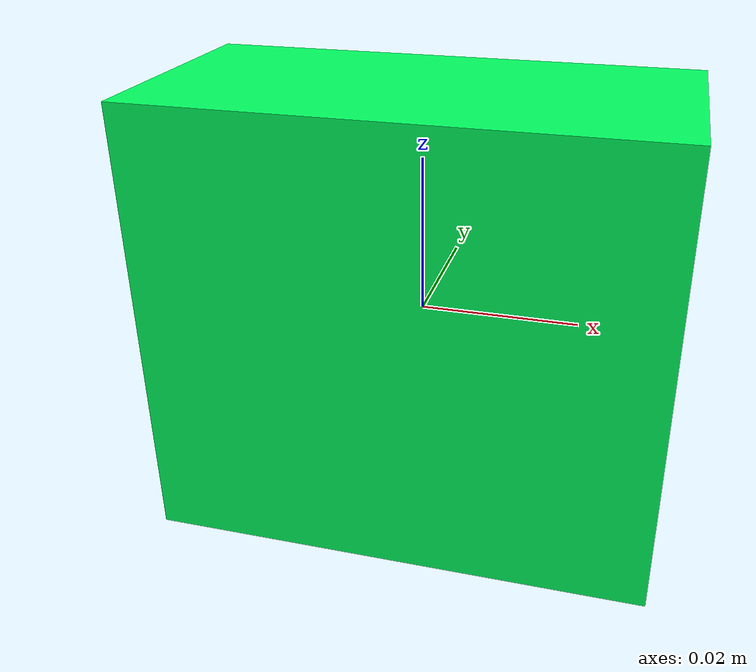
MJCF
<mujoco model="green_cuboid">
  <compiler angle="radian" meshdir="assets" autolimits="true"/>

  <option cone="elliptic" impratio="10"/>

  <worldbody>
    <body name="box_body">
        <geom type="box" size="0.032 0.016 0.0288" rgba="0 0.984 0.373 1" name="box_geom" friction="1 0.3 0.1" density="50" group="1" priority="1" solref="0.004 1" solimp="0.95 0.99 0.001" />
        <joint type="free" name="box_joint" />
    </body>
  </worldbody>

</mujoco>
